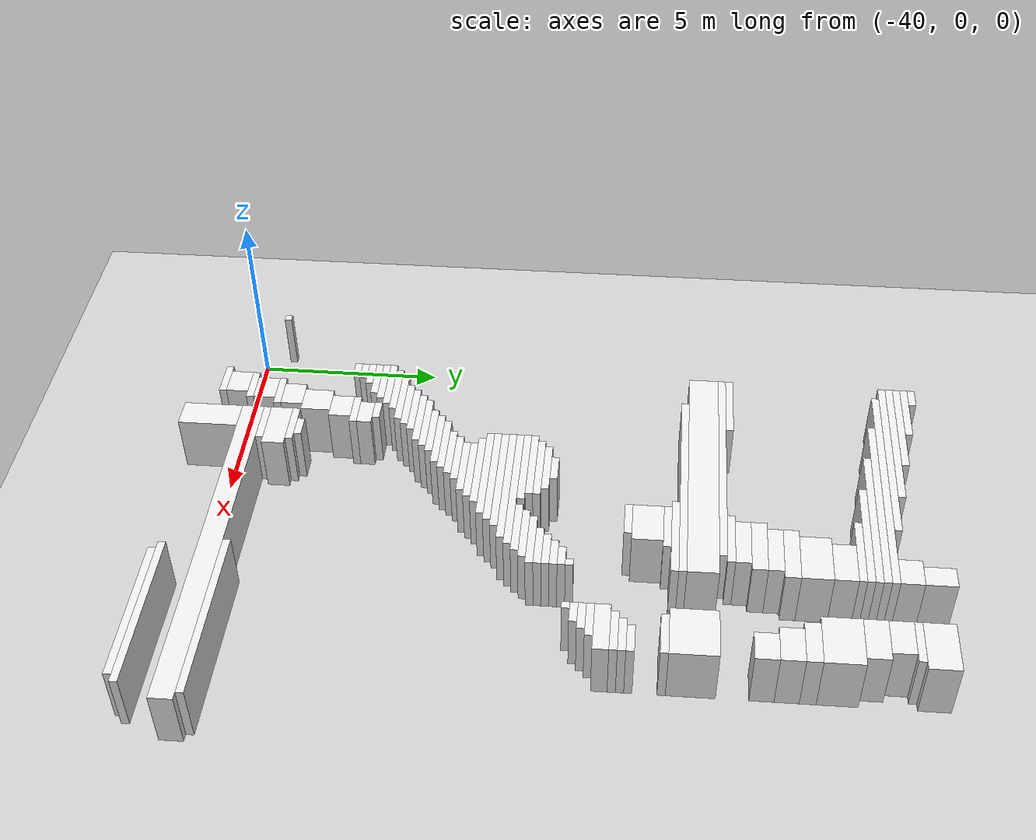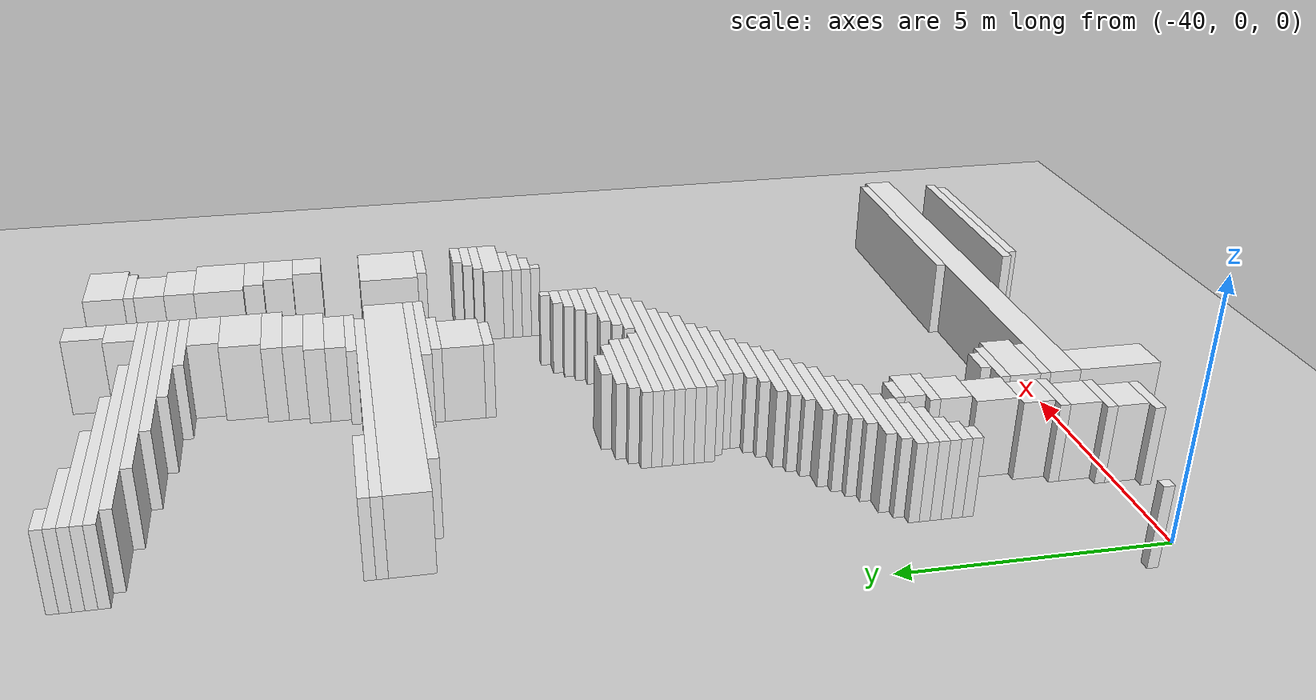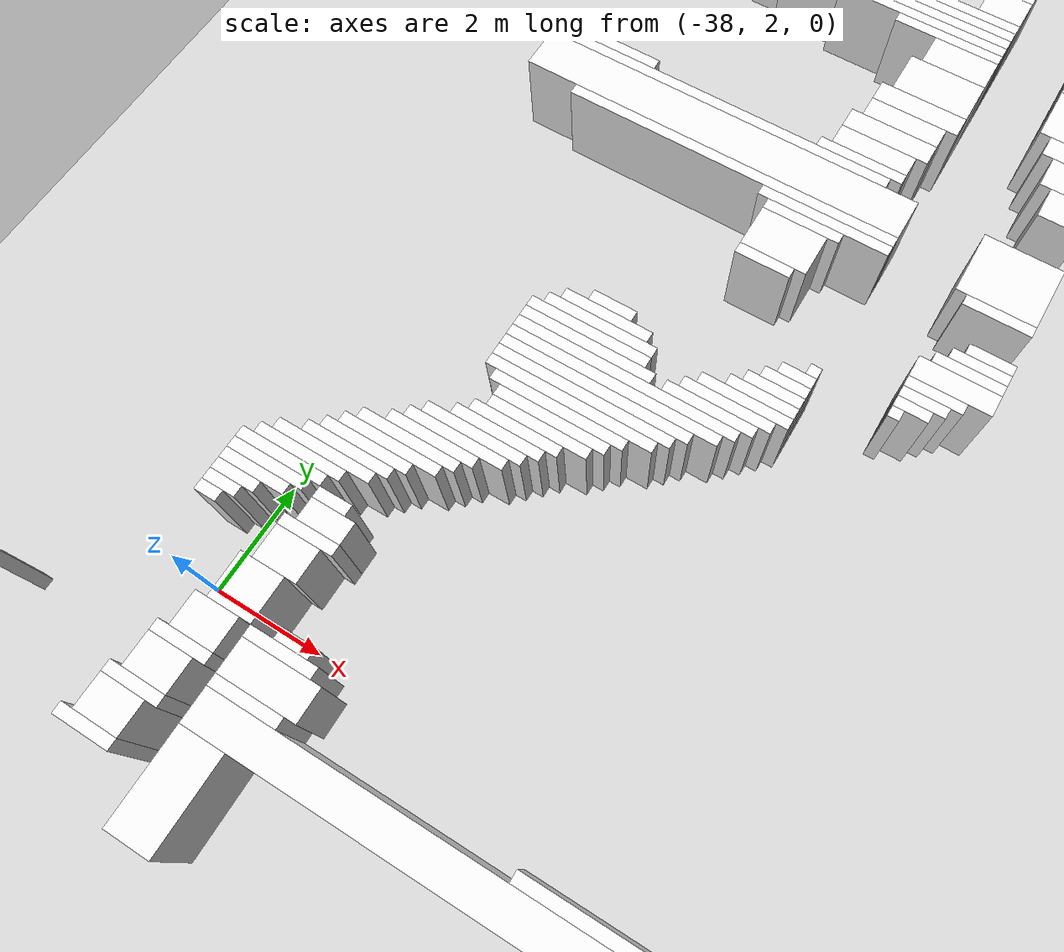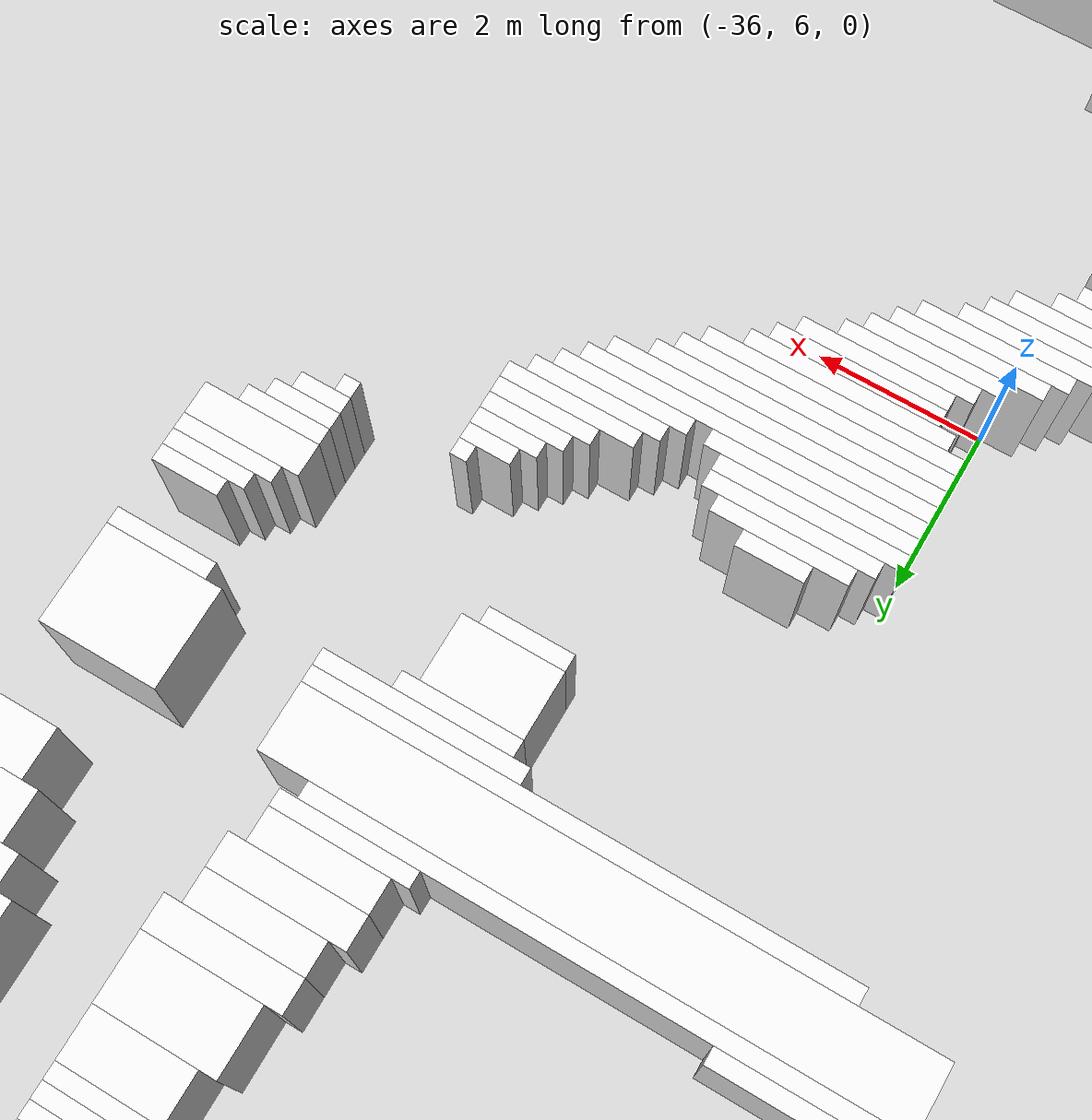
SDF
<sdf version="1.7">
 <world name="default">
  <model name="ground_plane">
   <static>1</static>
   <link name="link">
    <collision name="collision">
     <geometry><plane><normal>0 0 1</normal><size>120 120</size></plane></geometry>
    </collision>
    <visual name="visual">
     <geometry><plane><normal>0 0 1</normal><size>120 120</size></plane></geometry>
     <material>
      <script><uri>file://media/materials/scripts/gazebo.material</uri><name>Gazebo/Grey</name></script>
     </material>
    </visual>
   </link>
  </model>
  <model name="random_complex_01_model">
   <static>1</static>
   <link name="obs_1030">
    <pose>-38.3000 18.5000 0.8000 0 0 0</pose>
    <collision name="obs_1030_col"><geometry><box><size>0.6000 0.2000 1.6000</size></box></geometry></collision>
    <visual name="obs_1030_vis">
     <geometry><box><size>0.6000 0.2000 1.6000</size></box></geometry>
     <material>
      <script><uri>file://media/materials/scripts/gazebo.material</uri><name>Gazebo/White</name></script>
     </material>
    </visual>
   </link>
   <link name="obs_1033">
    <pose>-31.7000 18.6000 0.8000 0 0 0</pose>
    <collision name="obs_1033_col"><geometry><box><size>0.6000 0.8000 1.6000</size></box></geometry></collision>
    <visual name="obs_1033_vis">
     <geometry><box><size>0.6000 0.8000 1.6000</size></box></geometry>
     <material>
      <script><uri>file://media/materials/scripts/gazebo.material</uri><name>Gazebo/White</name></script>
     </material>
    </visual>
   </link>
   <link name="obs_1039">
    <pose>-37.7000 18.3000 0.8000 0 0 0</pose>
    <collision name="obs_1039_col"><geometry><box><size>1.8000 0.2000 1.6000</size></box></geometry></collision>
    <visual name="obs_1039_vis">
     <geometry><box><size>1.8000 0.2000 1.6000</size></box></geometry>
     <material>
      <script><uri>file://media/materials/scripts/gazebo.material</uri><name>Gazebo/White</name></script>
     </material>
    </visual>
   </link>
   <link name="obs_1045">
    <pose>-29.5000 18.4000 0.8000 0 0 0</pose>
    <collision name="obs_1045_col"><geometry><box><size>1.4000 0.8000 1.6000</size></box></geometry></collision>
    <visual name="obs_1045_vis">
     <geometry><box><size>1.4000 0.8000 1.6000</size></box></geometry>
     <material>
      <script><uri>file://media/materials/scripts/gazebo.material</uri><name>Gazebo/White</name></script>
     </material>
    </visual>
   </link>
   <link name="obs_1048">
    <pose>-37.1000 18.1000 0.8000 0 0 0</pose>
    <collision name="obs_1048_col"><geometry><box><size>3.0000 0.2000 1.6000</size></box></geometry></collision>
    <visual name="obs_1048_vis">
     <geometry><box><size>3.0000 0.2000 1.6000</size></box></geometry>
     <material>
      <script><uri>file://media/materials/scripts/gazebo.material</uri><name>Gazebo/White</name></script>
     </material>
    </visual>
   </link>
   <link name="obs_1060">
    <pose>-36.5000 17.9000 0.8000 0 0 0</pose>
    <collision name="obs_1060_col"><geometry><box><size>4.2000 0.2000 1.6000</size></box></geometry></collision>
    <visual name="obs_1060_vis">
     <geometry><box><size>4.2000 0.2000 1.6000</size></box></geometry>
     <material>
      <script><uri>file://media/materials/scripts/gazebo.material</uri><name>Gazebo/White</name></script>
     </material>
    </visual>
   </link>
   <link name="obs_1061">
    <pose>-29.6000 17.9000 0.8000 0 0 0</pose>
    <collision name="obs_1061_col"><geometry><box><size>1.2000 0.2000 1.6000</size></box></geometry></collision>
    <visual name="obs_1061_vis">
     <geometry><box><size>1.2000 0.2000 1.6000</size></box></geometry>
     <material>
      <script><uri>file://media/materials/scripts/gazebo.material</uri><name>Gazebo/White</name></script>
     </material>
    </visual>
   </link>
   <link name="obs_1066">
    <pose>-31.8000 17.9000 0.8000 0 0 0</pose>
    <collision name="obs_1066_col"><geometry><box><size>0.8000 0.6000 1.6000</size></box></geometry></collision>
    <visual name="obs_1066_vis">
     <geometry><box><size>0.8000 0.6000 1.6000</size></box></geometry>
     <material>
      <script><uri>file://media/materials/scripts/gazebo.material</uri><name>Gazebo/White</name></script>
     </material>
    </visual>
   </link>
   <link name="obs_1068">
    <pose>-35.9000 17.7000 0.8000 0 0 0</pose>
    <collision name="obs_1068_col"><geometry><box><size>5.4000 0.2000 1.6000</size></box></geometry></collision>
    <visual name="obs_1068_vis">
     <geometry><box><size>5.4000 0.2000 1.6000</size></box></geometry>
     <material>
      <script><uri>file://media/materials/scripts/gazebo.material</uri><name>Gazebo/White</name></script>
     </material>
    </visual>
   </link>
   <link name="obs_1076">
    <pose>-34.8000 17.5000 0.8000 0 0 0</pose>
    <collision name="obs_1076_col"><geometry><box><size>6.8000 0.2000 1.6000</size></box></geometry></collision>
    <visual name="obs_1076_vis">
     <geometry><box><size>6.8000 0.2000 1.6000</size></box></geometry>
     <material>
      <script><uri>file://media/materials/scripts/gazebo.material</uri><name>Gazebo/White</name></script>
     </material>
    </visual>
   </link>
   <link name="obs_1080">
    <pose>-29.7000 17.5000 0.8000 0 0 0</pose>
    <collision name="obs_1080_col"><geometry><box><size>1.0000 0.6000 1.6000</size></box></geometry></collision>
    <visual name="obs_1080_vis">
     <geometry><box><size>1.0000 0.6000 1.6000</size></box></geometry>
     <material>
      <script><uri>file://media/materials/scripts/gazebo.material</uri><name>Gazebo/White</name></script>
     </material>
    </visual>
   </link>
   <link name="obs_1083">
    <pose>-34.2000 17.3000 0.8000 0 0 0</pose>
    <collision name="obs_1083_col"><geometry><box><size>5.6000 0.2000 1.6000</size></box></geometry></collision>
    <visual name="obs_1083_vis">
     <geometry><box><size>5.6000 0.2000 1.6000</size></box></geometry>
     <material>
      <script><uri>file://media/materials/scripts/gazebo.material</uri><name>Gazebo/White</name></script>
     </material>
    </visual>
   </link>
   <link name="obs_1090">
    <pose>-33.6000 17.1000 0.8000 0 0 0</pose>
    <collision name="obs_1090_col"><geometry><box><size>4.4000 0.2000 1.6000</size></box></geometry></collision>
    <visual name="obs_1090_vis">
     <geometry><box><size>4.4000 0.2000 1.6000</size></box></geometry>
     <material>
      <script><uri>file://media/materials/scripts/gazebo.material</uri><name>Gazebo/White</name></script>
     </material>
    </visual>
   </link>
   <link name="obs_1098">
    <pose>-33.0000 16.9000 0.8000 0 0 0</pose>
    <collision name="obs_1098_col"><geometry><box><size>3.2000 0.2000 1.6000</size></box></geometry></collision>
    <visual name="obs_1098_vis">
     <geometry><box><size>3.2000 0.2000 1.6000</size></box></geometry>
     <material>
      <script><uri>file://media/materials/scripts/gazebo.material</uri><name>Gazebo/White</name></script>
     </material>
    </visual>
   </link>
   <link name="obs_1104">
    <pose>-29.6000 16.9000 0.8000 0 0 0</pose>
    <collision name="obs_1104_col"><geometry><box><size>1.2000 0.6000 1.6000</size></box></geometry></collision>
    <visual name="obs_1104_vis">
     <geometry><box><size>1.2000 0.6000 1.6000</size></box></geometry>
     <material>
      <script><uri>file://media/materials/scripts/gazebo.material</uri><name>Gazebo/White</name></script>
     </material>
    </visual>
   </link>
   <link name="obs_1108">
    <pose>-32.4000 16.7000 0.8000 0 0 0</pose>
    <collision name="obs_1108_col"><geometry><box><size>2.0000 0.2000 1.6000</size></box></geometry></collision>
    <visual name="obs_1108_vis">
     <geometry><box><size>2.0000 0.2000 1.6000</size></box></geometry>
     <material>
      <script><uri>file://media/materials/scripts/gazebo.material</uri><name>Gazebo/White</name></script>
     </material>
    </visual>
   </link>
   <link name="obs_1131">
    <pose>-32.0000 16.3000 0.8000 0 0 0</pose>
    <collision name="obs_1131_col"><geometry><box><size>1.2000 0.6000 1.6000</size></box></geometry></collision>
    <visual name="obs_1131_vis">
     <geometry><box><size>1.2000 0.6000 1.6000</size></box></geometry>
     <material>
      <script><uri>file://media/materials/scripts/gazebo.material</uri><name>Gazebo/White</name></script>
     </material>
    </visual>
   </link>
   <link name="obs_1149">
    <pose>-29.5000 16.1000 0.8000 0 0 0</pose>
    <collision name="obs_1149_col"><geometry><box><size>1.4000 1.0000 1.6000</size></box></geometry></collision>
    <visual name="obs_1149_vis">
     <geometry><box><size>1.4000 1.0000 1.6000</size></box></geometry>
     <material>
      <script><uri>file://media/materials/scripts/gazebo.material</uri><name>Gazebo/White</name></script>
     </material>
    </visual>
   </link>
   <link name="obs_1166">
    <pose>-32.1000 15.6000 0.8000 0 0 0</pose>
    <collision name="obs_1166_col"><geometry><box><size>1.4000 0.8000 1.6000</size></box></geometry></collision>
    <visual name="obs_1166_vis">
     <geometry><box><size>1.4000 0.8000 1.6000</size></box></geometry>
     <material>
      <script><uri>file://media/materials/scripts/gazebo.material</uri><name>Gazebo/White</name></script>
     </material>
    </visual>
   </link>
   <link name="obs_1168">
    <pose>-29.4000 15.4000 0.8000 0 0 0</pose>
    <collision name="obs_1168_col"><geometry><box><size>1.2000 0.4000 1.6000</size></box></geometry></collision>
    <visual name="obs_1168_vis">
     <geometry><box><size>1.2000 0.4000 1.6000</size></box></geometry>
     <material>
      <script><uri>file://media/materials/scripts/gazebo.material</uri><name>Gazebo/White</name></script>
     </material>
    </visual>
   </link>
   <link name="obs_1182">
    <pose>-32.2000 15.0000 0.8000 0 0 0</pose>
    <collision name="obs_1182_col"><geometry><box><size>1.6000 0.4000 1.6000</size></box></geometry></collision>
    <visual name="obs_1182_vis">
     <geometry><box><size>1.6000 0.4000 1.6000</size></box></geometry>
     <material>
      <script><uri>file://media/materials/scripts/gazebo.material</uri><name>Gazebo/White</name></script>
     </material>
    </visual>
   </link>
   <link name="obs_1190">
    <pose>-29.3000 14.9000 0.8000 0 0 0</pose>
    <collision name="obs_1190_col"><geometry><box><size>1.0000 0.6000 1.6000</size></box></geometry></collision>
    <visual name="obs_1190_vis">
     <geometry><box><size>1.0000 0.6000 1.6000</size></box></geometry>
     <material>
      <script><uri>file://media/materials/scripts/gazebo.material</uri><name>Gazebo/White</name></script>
     </material>
    </visual>
   </link>
   <link name="obs_1200">
    <pose>-32.3000 14.6000 0.8000 0 0 0</pose>
    <collision name="obs_1200_col"><geometry><box><size>1.4000 0.4000 1.6000</size></box></geometry></collision>
    <visual name="obs_1200_vis">
     <geometry><box><size>1.4000 0.4000 1.6000</size></box></geometry>
     <material>
      <script><uri>file://media/materials/scripts/gazebo.material</uri><name>Gazebo/White</name></script>
     </material>
    </visual>
   </link>
   <link name="obs_1213">
    <pose>-29.2000 14.3000 0.8000 0 0 0</pose>
    <collision name="obs_1213_col"><geometry><box><size>0.8000 0.6000 1.6000</size></box></geometry></collision>
    <visual name="obs_1213_vis">
     <geometry><box><size>0.8000 0.6000 1.6000</size></box></geometry>
     <material>
      <script><uri>file://media/materials/scripts/gazebo.material</uri><name>Gazebo/White</name></script>
     </material>
    </visual>
   </link>
   <link name="obs_1214">
    <pose>-32.4000 14.2000 0.8000 0 0 0</pose>
    <collision name="obs_1214_col"><geometry><box><size>1.6000 0.4000 1.6000</size></box></geometry></collision>
    <visual name="obs_1214_vis">
     <geometry><box><size>1.6000 0.4000 1.6000</size></box></geometry>
     <material>
      <script><uri>file://media/materials/scripts/gazebo.material</uri><name>Gazebo/White</name></script>
     </material>
    </visual>
   </link>
   <link name="obs_1227">
    <pose>-32.5000 13.8000 0.8000 0 0 0</pose>
    <collision name="obs_1227_col"><geometry><box><size>1.4000 0.4000 1.6000</size></box></geometry></collision>
    <visual name="obs_1227_vis">
     <geometry><box><size>1.4000 0.4000 1.6000</size></box></geometry>
     <material>
      <script><uri>file://media/materials/scripts/gazebo.material</uri><name>Gazebo/White</name></script>
     </material>
    </visual>
   </link>
   <link name="obs_1236">
    <pose>-37.6000 13.5000 0.8000 0 0 0</pose>
    <collision name="obs_1236_col"><geometry><box><size>2.0000 0.2000 1.6000</size></box></geometry></collision>
    <visual name="obs_1236_vis">
     <geometry><box><size>2.0000 0.2000 1.6000</size></box></geometry>
     <material>
      <script><uri>file://media/materials/scripts/gazebo.material</uri><name>Gazebo/White</name></script>
     </material>
    </visual>
   </link>
   <link name="obs_1237">
    <pose>-32.6000 13.5000 0.8000 0 0 0</pose>
    <collision name="obs_1237_col"><geometry><box><size>1.6000 0.2000 1.6000</size></box></geometry></collision>
    <visual name="obs_1237_vis">
     <geometry><box><size>1.6000 0.2000 1.6000</size></box></geometry>
     <material>
      <script><uri>file://media/materials/scripts/gazebo.material</uri><name>Gazebo/White</name></script>
     </material>
    </visual>
   </link>
   <link name="obs_1250">
    <pose>-35.3000 13.3000 0.8000 0 0 0</pose>
    <collision name="obs_1250_col"><geometry><box><size>6.6000 0.2000 1.6000</size></box></geometry></collision>
    <visual name="obs_1250_vis">
     <geometry><box><size>6.6000 0.2000 1.6000</size></box></geometry>
     <material>
      <script><uri>file://media/materials/scripts/gazebo.material</uri><name>Gazebo/White</name></script>
     </material>
    </visual>
   </link>
   <link name="obs_1280">
    <pose>-35.0000 12.8000 0.8000 0 0 0</pose>
    <collision name="obs_1280_col"><geometry><box><size>7.2000 0.8000 1.6000</size></box></geometry></collision>
    <visual name="obs_1280_vis">
     <geometry><box><size>7.2000 0.8000 1.6000</size></box></geometry>
     <material>
      <script><uri>file://media/materials/scripts/gazebo.material</uri><name>Gazebo/White</name></script>
     </material>
    </visual>
   </link>
   <link name="obs_1291">
    <pose>-34.5000 12.3000 0.8000 0 0 0</pose>
    <collision name="obs_1291_col"><geometry><box><size>6.2000 0.2000 1.6000</size></box></geometry></collision>
    <visual name="obs_1291_vis">
     <geometry><box><size>6.2000 0.2000 1.6000</size></box></geometry>
     <material>
      <script><uri>file://media/materials/scripts/gazebo.material</uri><name>Gazebo/White</name></script>
     </material>
    </visual>
   </link>
   <link name="obs_1297">
    <pose>-29.5000 12.6000 0.8000 0 0 0</pose>
    <collision name="obs_1297_col"><geometry><box><size>1.4000 1.2000 1.6000</size></box></geometry></collision>
    <visual name="obs_1297_vis">
     <geometry><box><size>1.4000 1.2000 1.6000</size></box></geometry>
     <material>
      <script><uri>file://media/materials/scripts/gazebo.material</uri><name>Gazebo/White</name></script>
     </material>
    </visual>
   </link>
   <link name="obs_1302">
    <pose>-32.6000 12.1000 0.8000 0 0 0</pose>
    <collision name="obs_1302_col"><geometry><box><size>2.4000 0.2000 1.6000</size></box></geometry></collision>
    <visual name="obs_1302_vis">
     <geometry><box><size>2.4000 0.2000 1.6000</size></box></geometry>
     <material>
      <script><uri>file://media/materials/scripts/gazebo.material</uri><name>Gazebo/White</name></script>
     </material>
    </visual>
   </link>
   <link name="obs_1310">
    <pose>-32.9000 11.9000 0.8000 0 0 0</pose>
    <collision name="obs_1310_col"><geometry><box><size>1.4000 0.2000 1.6000</size></box></geometry></collision>
    <visual name="obs_1310_vis">
     <geometry><box><size>1.4000 0.2000 1.6000</size></box></geometry>
     <material>
      <script><uri>file://media/materials/scripts/gazebo.material</uri><name>Gazebo/White</name></script>
     </material>
    </visual>
   </link>
   <link name="obs_1311">
    <pose>-29.4000 11.9000 0.8000 0 0 0</pose>
    <collision name="obs_1311_col"><geometry><box><size>1.2000 0.2000 1.6000</size></box></geometry></collision>
    <visual name="obs_1311_vis">
     <geometry><box><size>1.2000 0.2000 1.6000</size></box></geometry>
     <material>
      <script><uri>file://media/materials/scripts/gazebo.material</uri><name>Gazebo/White</name></script>
     </material>
    </visual>
   </link>
   <link name="obs_1332">
    <pose>-33.0000 11.4000 0.8000 0 0 0</pose>
    <collision name="obs_1332_col"><geometry><box><size>1.2000 0.8000 1.6000</size></box></geometry></collision>
    <visual name="obs_1332_vis">
     <geometry><box><size>1.2000 0.8000 1.6000</size></box></geometry>
     <material>
      <script><uri>file://media/materials/scripts/gazebo.material</uri><name>Gazebo/White</name></script>
     </material>
    </visual>
   </link>
   <link name="obs_1335">
    <pose>-29.2000 11.1000 0.8000 0 0 0</pose>
    <collision name="obs_1335_col"><geometry><box><size>0.8000 0.2000 1.6000</size></box></geometry></collision>
    <visual name="obs_1335_vis">
     <geometry><box><size>0.8000 0.2000 1.6000</size></box></geometry>
     <material>
      <script><uri>file://media/materials/scripts/gazebo.material</uri><name>Gazebo/White</name></script>
     </material>
    </visual>
   </link>
   <link name="obs_1340">
    <pose>-33.1000 10.9000 0.8000 0 0 0</pose>
    <collision name="obs_1340_col"><geometry><box><size>1.0000 0.2000 1.6000</size></box></geometry></collision>
    <visual name="obs_1340_vis">
     <geometry><box><size>1.0000 0.2000 1.6000</size></box></geometry>
     <material>
      <script><uri>file://media/materials/scripts/gazebo.material</uri><name>Gazebo/White</name></script>
     </material>
    </visual>
   </link>
   <link name="obs_1341">
    <pose>-29.3000 10.9000 0.8000 0 0 0</pose>
    <collision name="obs_1341_col"><geometry><box><size>1.0000 0.2000 1.6000</size></box></geometry></collision>
    <visual name="obs_1341_vis">
     <geometry><box><size>1.0000 0.2000 1.6000</size></box></geometry>
     <material>
      <script><uri>file://media/materials/scripts/gazebo.material</uri><name>Gazebo/White</name></script>
     </material>
    </visual>
   </link>
   <link name="obs_1347">
    <pose>-29.4000 10.7000 0.8000 0 0 0</pose>
    <collision name="obs_1347_col"><geometry><box><size>1.2000 0.2000 1.6000</size></box></geometry></collision>
    <visual name="obs_1347_vis">
     <geometry><box><size>1.2000 0.2000 1.6000</size></box></geometry>
     <material>
      <script><uri>file://media/materials/scripts/gazebo.material</uri><name>Gazebo/White</name></script>
     </material>
    </visual>
   </link>
   <link name="obs_1357">
    <pose>-29.5000 10.4000 0.8000 0 0 0</pose>
    <collision name="obs_1357_col"><geometry><box><size>1.4000 0.4000 1.6000</size></box></geometry></collision>
    <visual name="obs_1357_vis">
     <geometry><box><size>1.4000 0.4000 1.6000</size></box></geometry>
     <material>
      <script><uri>file://media/materials/scripts/gazebo.material</uri><name>Gazebo/White</name></script>
     </material>
    </visual>
   </link>
   <link name="obs_1366">
    <pose>-29.7000 10.1000 0.8000 0 0 0</pose>
    <collision name="obs_1366_col"><geometry><box><size>1.0000 0.2000 1.6000</size></box></geometry></collision>
    <visual name="obs_1366_vis">
     <geometry><box><size>1.0000 0.2000 1.6000</size></box></geometry>
     <material>
      <script><uri>file://media/materials/scripts/gazebo.material</uri><name>Gazebo/White</name></script>
     </material>
    </visual>
   </link>
   <link name="obs_1373">
    <pose>-29.8000 9.9000 0.8000 0 0 0</pose>
    <collision name="obs_1373_col"><geometry><box><size>0.8000 0.2000 1.6000</size></box></geometry></collision>
    <visual name="obs_1373_vis">
     <geometry><box><size>0.8000 0.2000 1.6000</size></box></geometry>
     <material>
      <script><uri>file://media/materials/scripts/gazebo.material</uri><name>Gazebo/White</name></script>
     </material>
    </visual>
   </link>
   <link name="obs_1380">
    <pose>-29.9000 9.7000 0.8000 0 0 0</pose>
    <collision name="obs_1380_col"><geometry><box><size>0.6000 0.2000 1.6000</size></box></geometry></collision>
    <visual name="obs_1380_vis">
     <geometry><box><size>0.6000 0.2000 1.6000</size></box></geometry>
     <material>
      <script><uri>file://media/materials/scripts/gazebo.material</uri><name>Gazebo/White</name></script>
     </material>
    </visual>
   </link>
   <link name="obs_1389">
    <pose>-31.5000 9.5000 0.8000 0 0 0</pose>
    <collision name="obs_1389_col"><geometry><box><size>0.2000 0.2000 1.6000</size></box></geometry></collision>
    <visual name="obs_1389_vis">
     <geometry><box><size>0.2000 0.2000 1.6000</size></box></geometry>
     <material>
      <script><uri>file://media/materials/scripts/gazebo.material</uri><name>Gazebo/White</name></script>
     </material>
    </visual>
   </link>
   <link name="obs_1390">
    <pose>-30.1000 9.5000 0.8000 0 0 0</pose>
    <collision name="obs_1390_col"><geometry><box><size>0.2000 0.2000 1.6000</size></box></geometry></collision>
    <visual name="obs_1390_vis">
     <geometry><box><size>0.2000 0.2000 1.6000</size></box></geometry>
     <material>
      <script><uri>file://media/materials/scripts/gazebo.material</uri><name>Gazebo/White</name></script>
     </material>
    </visual>
   </link>
   <link name="obs_1395">
    <pose>-31.7000 9.3000 0.8000 0 0 0</pose>
    <collision name="obs_1395_col"><geometry><box><size>0.6000 0.2000 1.6000</size></box></geometry></collision>
    <visual name="obs_1395_vis">
     <geometry><box><size>0.6000 0.2000 1.6000</size></box></geometry>
     <material>
      <script><uri>file://media/materials/scripts/gazebo.material</uri><name>Gazebo/White</name></script>
     </material>
    </visual>
   </link>
   <link name="obs_1403">
    <pose>-31.8000 9.1000 0.8000 0 0 0</pose>
    <collision name="obs_1403_col"><geometry><box><size>0.8000 0.2000 1.6000</size></box></geometry></collision>
    <visual name="obs_1403_vis">
     <geometry><box><size>0.8000 0.2000 1.6000</size></box></geometry>
     <material>
      <script><uri>file://media/materials/scripts/gazebo.material</uri><name>Gazebo/White</name></script>
     </material>
    </visual>
   </link>
   <link name="obs_1413">
    <pose>-34.8000 8.9000 0.8000 0 0 0</pose>
    <collision name="obs_1413_col"><geometry><box><size>0.8000 0.2000 1.6000</size></box></geometry></collision>
    <visual name="obs_1413_vis">
     <geometry><box><size>0.8000 0.2000 1.6000</size></box></geometry>
     <material>
      <script><uri>file://media/materials/scripts/gazebo.material</uri><name>Gazebo/White</name></script>
     </material>
    </visual>
   </link>
   <link name="obs_1414">
    <pose>-31.9000 8.9000 0.8000 0 0 0</pose>
    <collision name="obs_1414_col"><geometry><box><size>1.0000 0.2000 1.6000</size></box></geometry></collision>
    <visual name="obs_1414_vis">
     <geometry><box><size>1.0000 0.2000 1.6000</size></box></geometry>
     <material>
      <script><uri>file://media/materials/scripts/gazebo.material</uri><name>Gazebo/White</name></script>
     </material>
    </visual>
   </link>
   <link name="obs_1422">
    <pose>-34.8000 8.7000 0.8000 0 0 0</pose>
    <collision name="obs_1422_col"><geometry><box><size>1.6000 0.2000 1.6000</size></box></geometry></collision>
    <visual name="obs_1422_vis">
     <geometry><box><size>1.6000 0.2000 1.6000</size></box></geometry>
     <material>
      <script><uri>file://media/materials/scripts/gazebo.material</uri><name>Gazebo/White</name></script>
     </material>
    </visual>
   </link>
   <link name="obs_1423">
    <pose>-32.0000 8.7000 0.8000 0 0 0</pose>
    <collision name="obs_1423_col"><geometry><box><size>1.2000 0.2000 1.6000</size></box></geometry></collision>
    <visual name="obs_1423_vis">
     <geometry><box><size>1.2000 0.2000 1.6000</size></box></geometry>
     <material>
      <script><uri>file://media/materials/scripts/gazebo.material</uri><name>Gazebo/White</name></script>
     </material>
    </visual>
   </link>
   <link name="obs_1430">
    <pose>-34.8000 8.5000 0.8000 0 0 0</pose>
    <collision name="obs_1430_col"><geometry><box><size>2.0000 0.2000 1.6000</size></box></geometry></collision>
    <visual name="obs_1430_vis">
     <geometry><box><size>2.0000 0.2000 1.6000</size></box></geometry>
     <material>
      <script><uri>file://media/materials/scripts/gazebo.material</uri><name>Gazebo/White</name></script>
     </material>
    </visual>
   </link>
   <link name="obs_1431">
    <pose>-32.2000 8.5000 0.8000 0 0 0</pose>
    <collision name="obs_1431_col"><geometry><box><size>1.6000 0.2000 1.6000</size></box></geometry></collision>
    <visual name="obs_1431_vis">
     <geometry><box><size>1.6000 0.2000 1.6000</size></box></geometry>
     <material>
      <script><uri>file://media/materials/scripts/gazebo.material</uri><name>Gazebo/White</name></script>
     </material>
    </visual>
   </link>
   <link name="obs_1438">
    <pose>-34.9000 8.3000 0.8000 0 0 0</pose>
    <collision name="obs_1438_col"><geometry><box><size>2.2000 0.2000 1.6000</size></box></geometry></collision>
    <visual name="obs_1438_vis">
     <geometry><box><size>2.2000 0.2000 1.6000</size></box></geometry>
     <material>
      <script><uri>file://media/materials/scripts/gazebo.material</uri><name>Gazebo/White</name></script>
     </material>
    </visual>
   </link>
   <link name="obs_1439">
    <pose>-32.4000 8.3000 0.8000 0 0 0</pose>
    <collision name="obs_1439_col"><geometry><box><size>1.6000 0.2000 1.6000</size></box></geometry></collision>
    <visual name="obs_1439_vis">
     <geometry><box><size>1.6000 0.2000 1.6000</size></box></geometry>
     <material>
      <script><uri>file://media/materials/scripts/gazebo.material</uri><name>Gazebo/White</name></script>
     </material>
    </visual>
   </link>
   <link name="obs_1447">
    <pose>-34.8000 8.1000 0.8000 0 0 0</pose>
    <collision name="obs_1447_col"><geometry><box><size>2.4000 0.2000 1.6000</size></box></geometry></collision>
    <visual name="obs_1447_vis">
     <geometry><box><size>2.4000 0.2000 1.6000</size></box></geometry>
     <material>
      <script><uri>file://media/materials/scripts/gazebo.material</uri><name>Gazebo/White</name></script>
     </material>
    </visual>
   </link>
   <link name="obs_1448">
    <pose>-32.6000 8.1000 0.8000 0 0 0</pose>
    <collision name="obs_1448_col"><geometry><box><size>1.6000 0.2000 1.6000</size></box></geometry></collision>
    <visual name="obs_1448_vis">
     <geometry><box><size>1.6000 0.2000 1.6000</size></box></geometry>
     <material>
      <script><uri>file://media/materials/scripts/gazebo.material</uri><name>Gazebo/White</name></script>
     </material>
    </visual>
   </link>
   <link name="obs_1453">
    <pose>-34.0000 7.9000 0.8000 0 0 0</pose>
    <collision name="obs_1453_col"><geometry><box><size>4.0000 0.2000 1.6000</size></box></geometry></collision>
    <visual name="obs_1453_vis">
     <geometry><box><size>4.0000 0.2000 1.6000</size></box></geometry>
     <material>
      <script><uri>file://media/materials/scripts/gazebo.material</uri><name>Gazebo/White</name></script>
     </material>
    </visual>
   </link>
   <link name="obs_1463">
    <pose>-34.1000 7.7000 0.8000 0 0 0</pose>
    <collision name="obs_1463_col"><geometry><box><size>3.8000 0.2000 1.6000</size></box></geometry></collision>
    <visual name="obs_1463_vis">
     <geometry><box><size>3.8000 0.2000 1.6000</size></box></geometry>
     <material>
      <script><uri>file://media/materials/scripts/gazebo.material</uri><name>Gazebo/White</name></script>
     </material>
    </visual>
   </link>
   <link name="obs_1470">
    <pose>-34.3000 7.5000 0.8000 0 0 0</pose>
    <collision name="obs_1470_col"><geometry><box><size>3.4000 0.2000 1.6000</size></box></geometry></collision>
    <visual name="obs_1470_vis">
     <geometry><box><size>3.4000 0.2000 1.6000</size></box></geometry>
     <material>
      <script><uri>file://media/materials/scripts/gazebo.material</uri><name>Gazebo/White</name></script>
     </material>
    </visual>
   </link>
   <link name="obs_1480">
    <pose>-34.4000 7.3000 0.8000 0 0 0</pose>
    <collision name="obs_1480_col"><geometry><box><size>3.2000 0.2000 1.6000</size></box></geometry></collision>
    <visual name="obs_1480_vis">
     <geometry><box><size>3.2000 0.2000 1.6000</size></box></geometry>
     <material>
      <script><uri>file://media/materials/scripts/gazebo.material</uri><name>Gazebo/White</name></script>
     </material>
    </visual>
   </link>
   <link name="obs_1486">
    <pose>-34.5000 7.1000 0.8000 0 0 0</pose>
    <collision name="obs_1486_col"><geometry><box><size>3.0000 0.2000 1.6000</size></box></geometry></collision>
    <visual name="obs_1486_vis">
     <geometry><box><size>3.0000 0.2000 1.6000</size></box></geometry>
     <material>
      <script><uri>file://media/materials/scripts/gazebo.material</uri><name>Gazebo/White</name></script>
     </material>
    </visual>
   </link>
   <link name="obs_1494">
    <pose>-34.6000 6.9000 0.8000 0 0 0</pose>
    <collision name="obs_1494_col"><geometry><box><size>2.4000 0.2000 1.6000</size></box></geometry></collision>
    <visual name="obs_1494_vis">
     <geometry><box><size>2.4000 0.2000 1.6000</size></box></geometry>
     <material>
      <script><uri>file://media/materials/scripts/gazebo.material</uri><name>Gazebo/White</name></script>
     </material>
    </visual>
   </link>
   <link name="obs_1500">
    <pose>-34.6000 6.7000 0.8000 0 0 0</pose>
    <collision name="obs_1500_col"><geometry><box><size>2.0000 0.2000 1.6000</size></box></geometry></collision>
    <visual name="obs_1500_vis">
     <geometry><box><size>2.0000 0.2000 1.6000</size></box></geometry>
     <material>
      <script><uri>file://media/materials/scripts/gazebo.material</uri><name>Gazebo/White</name></script>
     </material>
    </visual>
   </link>
   <link name="obs_1513">
    <pose>-34.7000 6.5000 0.8000 0 0 0</pose>
    <collision name="obs_1513_col"><geometry><box><size>1.8000 0.2000 1.6000</size></box></geometry></collision>
    <visual name="obs_1513_vis">
     <geometry><box><size>1.8000 0.2000 1.6000</size></box></geometry>
     <material>
      <script><uri>file://media/materials/scripts/gazebo.material</uri><name>Gazebo/White</name></script>
     </material>
    </visual>
   </link>
   <link name="obs_1521">
    <pose>-35.0000 6.3000 0.8000 0 0 0</pose>
    <collision name="obs_1521_col"><geometry><box><size>1.6000 0.2000 1.6000</size></box></geometry></collision>
    <visual name="obs_1521_vis">
     <geometry><box><size>1.6000 0.2000 1.6000</size></box></geometry>
     <material>
      <script><uri>file://media/materials/scripts/gazebo.material</uri><name>Gazebo/White</name></script>
     </material>
    </visual>
   </link>
   <link name="obs_1529">
    <pose>-35.2000 6.1000 0.8000 0 0 0</pose>
    <collision name="obs_1529_col"><geometry><box><size>1.6000 0.2000 1.6000</size></box></geometry></collision>
    <visual name="obs_1529_vis">
     <geometry><box><size>1.6000 0.2000 1.6000</size></box></geometry>
     <material>
      <script><uri>file://media/materials/scripts/gazebo.material</uri><name>Gazebo/White</name></script>
     </material>
    </visual>
   </link>
   <link name="obs_1538">
    <pose>-35.5000 5.9000 0.8000 0 0 0</pose>
    <collision name="obs_1538_col"><geometry><box><size>1.8000 0.2000 1.6000</size></box></geometry></collision>
    <visual name="obs_1538_vis">
     <geometry><box><size>1.8000 0.2000 1.6000</size></box></geometry>
     <material>
      <script><uri>file://media/materials/scripts/gazebo.material</uri><name>Gazebo/White</name></script>
     </material>
    </visual>
   </link>
   <link name="obs_1546">
    <pose>-35.7000 5.7000 0.8000 0 0 0</pose>
    <collision name="obs_1546_col"><geometry><box><size>1.8000 0.2000 1.6000</size></box></geometry></collision>
    <visual name="obs_1546_vis">
     <geometry><box><size>1.8000 0.2000 1.6000</size></box></geometry>
     <material>
      <script><uri>file://media/materials/scripts/gazebo.material</uri><name>Gazebo/White</name></script>
     </material>
    </visual>
   </link>
   <link name="obs_1554">
    <pose>-36.0000 5.5000 0.8000 0 0 0</pose>
    <collision name="obs_1554_col"><geometry><box><size>1.6000 0.2000 1.6000</size></box></geometry></collision>
    <visual name="obs_1554_vis">
     <geometry><box><size>1.6000 0.2000 1.6000</size></box></geometry>
     <material>
      <script><uri>file://media/materials/scripts/gazebo.material</uri><name>Gazebo/White</name></script>
     </material>
    </visual>
   </link>
   <link name="obs_1563">
    <pose>-36.3000 5.3000 0.8000 0 0 0</pose>
    <collision name="obs_1563_col"><geometry><box><size>1.8000 0.2000 1.6000</size></box></geometry></collision>
    <visual name="obs_1563_vis">
     <geometry><box><size>1.8000 0.2000 1.6000</size></box></geometry>
     <material>
      <script><uri>file://media/materials/scripts/gazebo.material</uri><name>Gazebo/White</name></script>
     </material>
    </visual>
   </link>
   <link name="obs_1574">
    <pose>-36.5000 5.1000 0.8000 0 0 0</pose>
    <collision name="obs_1574_col"><geometry><box><size>1.8000 0.2000 1.6000</size></box></geometry></collision>
    <visual name="obs_1574_vis">
     <geometry><box><size>1.8000 0.2000 1.6000</size></box></geometry>
     <material>
      <script><uri>file://media/materials/scripts/gazebo.material</uri><name>Gazebo/White</name></script>
     </material>
    </visual>
   </link>
   <link name="obs_1583">
    <pose>-36.8000 4.9000 0.8000 0 0 0</pose>
    <collision name="obs_1583_col"><geometry><box><size>1.6000 0.2000 1.6000</size></box></geometry></collision>
    <visual name="obs_1583_vis">
     <geometry><box><size>1.6000 0.2000 1.6000</size></box></geometry>
     <material>
      <script><uri>file://media/materials/scripts/gazebo.material</uri><name>Gazebo/White</name></script>
     </material>
    </visual>
   </link>
   <link name="obs_1593">
    <pose>-37.0000 4.7000 0.8000 0 0 0</pose>
    <collision name="obs_1593_col"><geometry><box><size>1.6000 0.2000 1.6000</size></box></geometry></collision>
    <visual name="obs_1593_vis">
     <geometry><box><size>1.6000 0.2000 1.6000</size></box></geometry>
     <material>
      <script><uri>file://media/materials/scripts/gazebo.material</uri><name>Gazebo/White</name></script>
     </material>
    </visual>
   </link>
   <link name="obs_1604">
    <pose>-37.3000 4.5000 0.8000 0 0 0</pose>
    <collision name="obs_1604_col"><geometry><box><size>1.8000 0.2000 1.6000</size></box></geometry></collision>
    <visual name="obs_1604_vis">
     <geometry><box><size>1.8000 0.2000 1.6000</size></box></geometry>
     <material>
      <script><uri>file://media/materials/scripts/gazebo.material</uri><name>Gazebo/White</name></script>
     </material>
    </visual>
   </link>
   <link name="obs_1613">
    <pose>-37.6000 4.3000 0.8000 0 0 0</pose>
    <collision name="obs_1613_col"><geometry><box><size>1.6000 0.2000 1.6000</size></box></geometry></collision>
    <visual name="obs_1613_vis">
     <geometry><box><size>1.6000 0.2000 1.6000</size></box></geometry>
     <material>
      <script><uri>file://media/materials/scripts/gazebo.material</uri><name>Gazebo/White</name></script>
     </material>
    </visual>
   </link>
   <link name="obs_1622">
    <pose>-37.8000 4.1000 0.8000 0 0 0</pose>
    <collision name="obs_1622_col"><geometry><box><size>1.6000 0.2000 1.6000</size></box></geometry></collision>
    <visual name="obs_1622_vis">
     <geometry><box><size>1.6000 0.2000 1.6000</size></box></geometry>
     <material>
      <script><uri>file://media/materials/scripts/gazebo.material</uri><name>Gazebo/White</name></script>
     </material>
    </visual>
   </link>
   <link name="obs_1636">
    <pose>-37.9000 3.9000 0.8000 0 0 0</pose>
    <collision name="obs_1636_col"><geometry><box><size>1.4000 0.2000 1.6000</size></box></geometry></collision>
    <visual name="obs_1636_vis">
     <geometry><box><size>1.4000 0.2000 1.6000</size></box></geometry>
     <material>
      <script><uri>file://media/materials/scripts/gazebo.material</uri><name>Gazebo/White</name></script>
     </material>
    </visual>
   </link>
   <link name="obs_1637">
    <pose>-36.7000 3.9000 0.8000 0 0 0</pose>
    <collision name="obs_1637_col"><geometry><box><size>0.6000 0.2000 1.6000</size></box></geometry></collision>
    <visual name="obs_1637_vis">
     <geometry><box><size>0.6000 0.2000 1.6000</size></box></geometry>
     <material>
      <script><uri>file://media/materials/scripts/gazebo.material</uri><name>Gazebo/White</name></script>
     </material>
    </visual>
   </link>
   <link name="obs_1650">
    <pose>-38.0000 3.7000 0.8000 0 0 0</pose>
    <collision name="obs_1650_col"><geometry><box><size>1.2000 0.2000 1.6000</size></box></geometry></collision>
    <visual name="obs_1650_vis">
     <geometry><box><size>1.2000 0.2000 1.6000</size></box></geometry>
     <material>
      <script><uri>file://media/materials/scripts/gazebo.material</uri><name>Gazebo/White</name></script>
     </material>
    </visual>
   </link>
   <link name="obs_1663">
    <pose>-36.6000 3.6000 0.8000 0 0 0</pose>
    <collision name="obs_1663_col"><geometry><box><size>0.8000 0.4000 1.6000</size></box></geometry></collision>
    <visual name="obs_1663_vis">
     <geometry><box><size>0.8000 0.4000 1.6000</size></box></geometry>
     <material>
      <script><uri>file://media/materials/scripts/gazebo.material</uri><name>Gazebo/White</name></script>
     </material>
    </visual>
   </link>
   <link name="obs_1668">
    <pose>-38.2000 3.5000 0.8000 0 0 0</pose>
    <collision name="obs_1668_col"><geometry><box><size>0.8000 0.2000 1.6000</size></box></geometry></collision>
    <visual name="obs_1668_vis">
     <geometry><box><size>0.8000 0.2000 1.6000</size></box></geometry>
     <material>
      <script><uri>file://media/materials/scripts/gazebo.material</uri><name>Gazebo/White</name></script>
     </material>
    </visual>
   </link>
   <link name="obs_1680">
    <pose>-38.3000 3.3000 0.8000 0 0 0</pose>
    <collision name="obs_1680_col"><geometry><box><size>0.6000 0.2000 1.6000</size></box></geometry></collision>
    <visual name="obs_1680_vis">
     <geometry><box><size>0.6000 0.2000 1.6000</size></box></geometry>
     <material>
      <script><uri>file://media/materials/scripts/gazebo.material</uri><name>Gazebo/White</name></script>
     </material>
    </visual>
   </link>
   <link name="obs_1681">
    <pose>-36.7000 3.3000 0.8000 0 0 0</pose>
    <collision name="obs_1681_col"><geometry><box><size>1.0000 0.2000 1.6000</size></box></geometry></collision>
    <visual name="obs_1681_vis">
     <geometry><box><size>1.0000 0.2000 1.6000</size></box></geometry>
     <material>
      <script><uri>file://media/materials/scripts/gazebo.material</uri><name>Gazebo/White</name></script>
     </material>
    </visual>
   </link>
   <link name="obs_1692">
    <pose>-38.4000 3.1000 0.8000 0 0 0</pose>
    <collision name="obs_1692_col"><geometry><box><size>0.4000 0.2000 1.6000</size></box></geometry></collision>
    <visual name="obs_1692_vis">
     <geometry><box><size>0.4000 0.2000 1.6000</size></box></geometry>
     <material>
      <script><uri>file://media/materials/scripts/gazebo.material</uri><name>Gazebo/White</name></script>
     </material>
    </visual>
   </link>
   <link name="obs_1712">
    <pose>-36.8000 2.9000 0.8000 0 0 0</pose>
    <collision name="obs_1712_col"><geometry><box><size>0.8000 0.6000 1.6000</size></box></geometry></collision>
    <visual name="obs_1712_vis">
     <geometry><box><size>0.8000 0.6000 1.6000</size></box></geometry>
     <material>
      <script><uri>file://media/materials/scripts/gazebo.material</uri><name>Gazebo/White</name></script>
     </material>
    </visual>
   </link>
   <link name="obs_1750">
    <pose>-37.0000 2.2000 0.8000 0 0 0</pose>
    <collision name="obs_1750_col"><geometry><box><size>0.8000 0.8000 1.6000</size></box></geometry></collision>
    <visual name="obs_1750_vis">
     <geometry><box><size>0.8000 0.8000 1.6000</size></box></geometry>
     <material>
      <script><uri>file://media/materials/scripts/gazebo.material</uri><name>Gazebo/White</name></script>
     </material>
    </visual>
   </link>
   <link name="obs_1755">
    <pose>-35.9000 1.9000 0.8000 0 0 0</pose>
    <collision name="obs_1755_col"><geometry><box><size>0.6000 0.2000 1.6000</size></box></geometry></collision>
    <visual name="obs_1755_vis">
     <geometry><box><size>0.6000 0.2000 1.6000</size></box></geometry>
     <material>
      <script><uri>file://media/materials/scripts/gazebo.material</uri><name>Gazebo/White</name></script>
     </material>
    </visual>
   </link>
   <link name="obs_1765">
    <pose>-36.0000 1.7000 0.8000 0 0 0</pose>
    <collision name="obs_1765_col"><geometry><box><size>1.2000 0.2000 1.6000</size></box></geometry></collision>
    <visual name="obs_1765_vis">
     <geometry><box><size>1.2000 0.2000 1.6000</size></box></geometry>
     <material>
      <script><uri>file://media/materials/scripts/gazebo.material</uri><name>Gazebo/White</name></script>
     </material>
    </visual>
   </link>
   <link name="obs_1783">
    <pose>-37.2000 1.5000 0.8000 0 0 0</pose>
    <collision name="obs_1783_col"><geometry><box><size>0.8000 0.6000 1.6000</size></box></geometry></collision>
    <visual name="obs_1783_vis">
     <geometry><box><size>0.8000 0.6000 1.6000</size></box></geometry>
     <material>
      <script><uri>file://media/materials/scripts/gazebo.material</uri><name>Gazebo/White</name></script>
     </material>
    </visual>
   </link>
   <link name="obs_1792">
    <pose>-35.9000 1.3000 0.8000 0 0 0</pose>
    <collision name="obs_1792_col"><geometry><box><size>1.4000 0.6000 1.6000</size></box></geometry></collision>
    <visual name="obs_1792_vis">
     <geometry><box><size>1.4000 0.6000 1.6000</size></box></geometry>
     <material>
      <script><uri>file://media/materials/scripts/gazebo.material</uri><name>Gazebo/White</name></script>
     </material>
    </visual>
   </link>
   <link name="obs_1794">
    <pose>-37.3000 1.1000 0.8000 0 0 0</pose>
    <collision name="obs_1794_col"><geometry><box><size>1.0000 0.2000 1.6000</size></box></geometry></collision>
    <visual name="obs_1794_vis">
     <geometry><box><size>1.0000 0.2000 1.6000</size></box></geometry>
     <material>
      <script><uri>file://media/materials/scripts/gazebo.material</uri><name>Gazebo/White</name></script>
     </material>
    </visual>
   </link>
   <link name="obs_1804">
    <pose>-36.0000 0.9000 0.8000 0 0 0</pose>
    <collision name="obs_1804_col"><geometry><box><size>1.2000 0.2000 1.6000</size></box></geometry></collision>
    <visual name="obs_1804_vis">
     <geometry><box><size>1.2000 0.2000 1.6000</size></box></geometry>
     <material>
      <script><uri>file://media/materials/scripts/gazebo.material</uri><name>Gazebo/White</name></script>
     </material>
    </visual>
   </link>
   <link name="obs_1805">
    <pose>-29.2000 0.9000 0.8000 0 0 0</pose>
    <collision name="obs_1805_col"><geometry><box><size>4.8000 0.2000 1.6000</size></box></geometry></collision>
    <visual name="obs_1805_vis">
     <geometry><box><size>4.8000 0.2000 1.6000</size></box></geometry>
     <material>
      <script><uri>file://media/materials/scripts/gazebo.material</uri><name>Gazebo/White</name></script>
     </material>
    </visual>
   </link>
   <link name="obs_1816">
    <pose>-40.5000 0.7000 0.8000 0 0 0</pose>
    <collision name="obs_1816_col"><geometry><box><size>0.2000 0.2000 1.6000</size></box></geometry></collision>
    <visual name="obs_1816_vis">
     <geometry><box><size>0.2000 0.2000 1.6000</size></box></geometry>
     <material>
      <script><uri>file://media/materials/scripts/gazebo.material</uri><name>Gazebo/White</name></script>
     </material>
    </visual>
   </link>
   <link name="obs_1820">
    <pose>-37.4000 0.7000 0.8000 0 0 0</pose>
    <collision name="obs_1820_col"><geometry><box><size>0.8000 0.6000 1.6000</size></box></geometry></collision>
    <visual name="obs_1820_vis">
     <geometry><box><size>0.8000 0.6000 1.6000</size></box></geometry>
     <material>
      <script><uri>file://media/materials/scripts/gazebo.material</uri><name>Gazebo/White</name></script>
     </material>
    </visual>
   </link>
   <link name="obs_1827">
    <pose>-31.6000 0.5000 0.8000 0 0 0</pose>
    <collision name="obs_1827_col"><geometry><box><size>10.0000 0.6000 1.6000</size></box></geometry></collision>
    <visual name="obs_1827_vis">
     <geometry><box><size>10.0000 0.6000 1.6000</size></box></geometry>
     <material>
      <script><uri>file://media/materials/scripts/gazebo.material</uri><name>Gazebo/White</name></script>
     </material>
    </visual>
   </link>
   <link name="obs_1831">
    <pose>-37.5000 0.3000 0.8000 0 0 0</pose>
    <collision name="obs_1831_col"><geometry><box><size>1.0000 0.2000 1.6000</size></box></geometry></collision>
    <visual name="obs_1831_vis">
     <geometry><box><size>1.0000 0.2000 1.6000</size></box></geometry>
     <material>
      <script><uri>file://media/materials/scripts/gazebo.material</uri><name>Gazebo/White</name></script>
     </material>
    </visual>
   </link>
   <link name="obs_1853">
    <pose>-37.6000 -0.1000 0.8000 0 0 0</pose>
    <collision name="obs_1853_col"><geometry><box><size>0.8000 0.6000 1.6000</size></box></geometry></collision>
    <visual name="obs_1853_vis">
     <geometry><box><size>0.8000 0.6000 1.6000</size></box></geometry>
     <material>
      <script><uri>file://media/materials/scripts/gazebo.material</uri><name>Gazebo/White</name></script>
     </material>
    </visual>
   </link>
   <link name="obs_1862">
    <pose>-37.7000 -0.5000 0.8000 0 0 0</pose>
    <collision name="obs_1862_col"><geometry><box><size>1.0000 0.2000 1.6000</size></box></geometry></collision>
    <visual name="obs_1862_vis">
     <geometry><box><size>1.0000 0.2000 1.6000</size></box></geometry>
     <material>
      <script><uri>file://media/materials/scripts/gazebo.material</uri><name>Gazebo/White</name></script>
     </material>
    </visual>
   </link>
   <link name="obs_1871">
    <pose>-29.2000 -0.7000 0.8000 0 0 0</pose>
    <collision name="obs_1871_col"><geometry><box><size>4.4000 0.2000 1.6000</size></box></geometry></collision>
    <visual name="obs_1871_vis">
     <geometry><box><size>4.4000 0.2000 1.6000</size></box></geometry>
     <material>
      <script><uri>file://media/materials/scripts/gazebo.material</uri><name>Gazebo/White</name></script>
     </material>
    </visual>
   </link>
   <link name="obs_1877">
    <pose>-29.2000 -0.9000 0.8000 0 0 0</pose>
    <collision name="obs_1877_col"><geometry><box><size>4.0000 0.2000 1.6000</size></box></geometry></collision>
    <visual name="obs_1877_vis">
     <geometry><box><size>4.0000 0.2000 1.6000</size></box></geometry>
     <material>
      <script><uri>file://media/materials/scripts/gazebo.material</uri><name>Gazebo/White</name></script>
     </material>
    </visual>
   </link>
   <link name="obs_1888">
    <pose>-36.2000 -0.6000 0.8000 0 0 0</pose>
    <collision name="obs_1888_col"><geometry><box><size>0.8000 1.6000 1.6000</size></box></geometry></collision>
    <visual name="obs_1888_vis">
     <geometry><box><size>0.8000 1.6000 1.6000</size></box></geometry>
     <material>
      <script><uri>file://media/materials/scripts/gazebo.material</uri><name>Gazebo/White</name></script>
     </material>
    </visual>
   </link>
  </model>
 </world>
</sdf>
